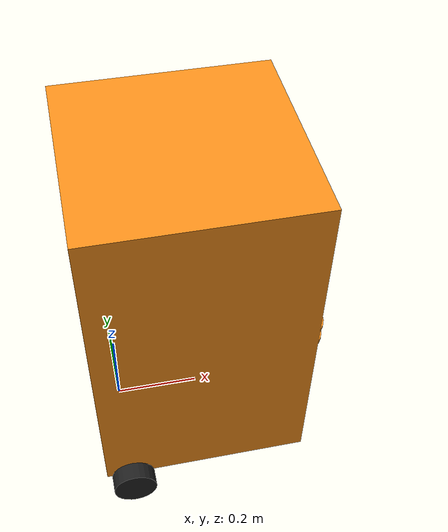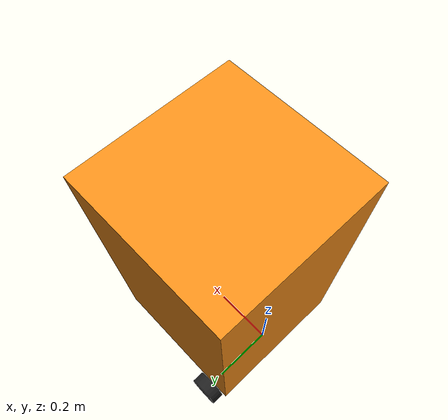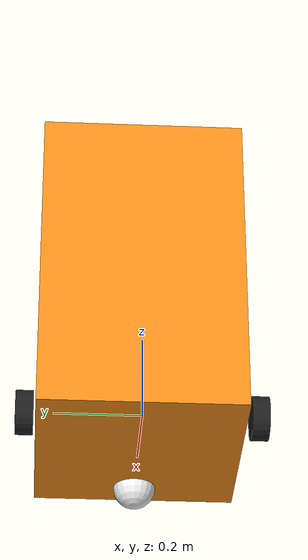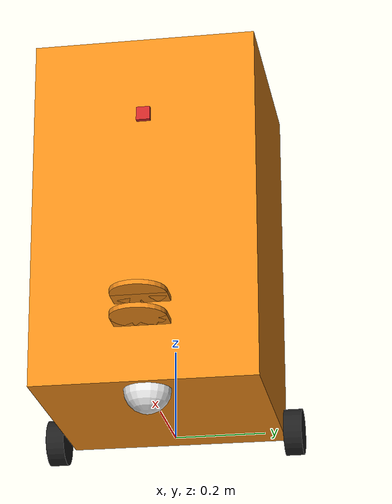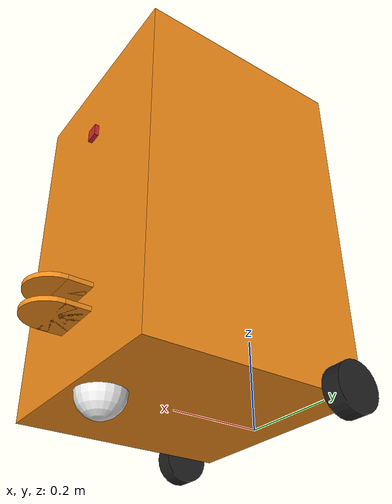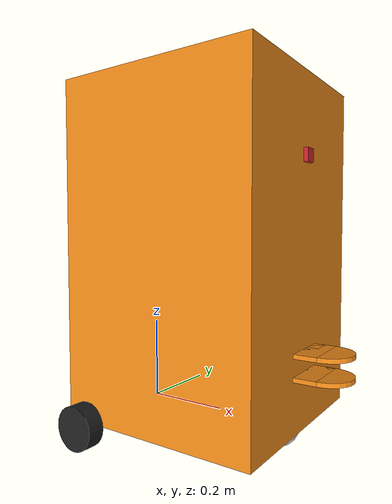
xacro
<?xml version="1.0"?>
<!-- Basic differential drive mobile base -->
<robot xmlns:xacro="http://www.ros.org/wiki/xacro" name="diffdrive_robot">
  <xacro:arg name="prefix" default="" />
  <xacro:arg name="use_mock_hardware" default="false" />

  <!-- Adding my own robot description xacro modelined earlier-->
  <xacro:include filename="bevbot_core.xacro"/>

  <!-- File for lidar and lidar mount -->
  <xacro:include filename="lidar.xacro"/>

  <!-- File for camera -->
  <xacro:include filename="camera.xacro"/>

  <!-- This ^ is old demo robot urdf-->

  <!-- Import Rviz colors -->
  <xacro:include filename="$(find ros2_control_demo_description)/diffbot/urdf/diffbot.materials.xacro" />

  <!-- Import diffbot ros2_control description -->
  <xacro:include filename="$(find ros2_control_demo_example_2)/ros2_control/diffbot.ros2_control.xacro" />

  <xacro:diffbot prefix="$(arg prefix)" />

  <xacro:diffbot_ros2_control
    name="DiffBot" prefix="$(arg prefix)" use_mock_hardware="$(arg use_mock_hardware)"/>

</robot>

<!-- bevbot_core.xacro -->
<robot xmlns:xacro="http://www.ros.org/wiki/xacro">

  <xacro:macro name="diffbot" params="prefix">

  <!-- Constants for robot dimensions -->
  <xacro:property name="PI" value="3.1415926535897931"/>
  <xacro:property name="base_mass" value="1" /> <!-- arbitrary value for base mass -->
  <xacro:property name="base_width" value=".4826" />
  <xacro:property name="base_length" value=".4826" />
  <xacro:property name="base_height" value=".78105" />
  <xacro:property name="wheel_mass" value="0.2" /> <!-- arbitrary value for wheel mass -->
  <xacro:property name="wheel_len" value="0.040" />
  <xacro:property name="wheel_space" value="0.005" />
  <xacro:property name="wheel_radius" value="0.0508" />
  <xacro:property name="caster_wheel_mass" value="0.1" /> <!-- arbitrary value for caster wheel mass -->
  <xacro:property name="caster_wheel_radius" value="0.0508" />
  <xacro:property name="caster_x" value="0.358" />
  <xacro:property name="z_offset" value="-${base_height/2}" /> <!-- Space btw top of beam and the each joint -->

  <!-- Base Link =============================================================================================-->

  <link name="${prefix}base_link">
  </link>

  <!-- Chassis link ====================================================================================-->

  <joint name="${prefix}chassis_joint" type="fixed">
    <parent link="${prefix}base_link"/>
    <child link="${prefix}chassis"/>
    <origin xyz="-.0623 0 0"/>
  </joint>

  <link name="${prefix}chassis">
    <visual>
      <origin xyz="${base_width/2} 0 ${base_height/2}" rpy="0 0 0"/>
      <geometry>
        <box size="${base_width} ${base_length} ${base_height}"/>
      </geometry>
      <material name="orange"/>
    </visual>

    <collision>
      <origin xyz="${base_width/2} 0 ${base_height/2}" rpy="0 0 0"/>
      <geometry>
        <box size="${base_width} ${base_length} ${base_height}"/>
      </geometry>
    </collision>

    <inertial>
      <origin xyz="${base_width/2} 0 ${base_height/2}" rpy="0 0 0"/>
      <mass value="${base_mass}"/>
      <inertia
        ixx="${base_mass / 12.0 * (base_length*base_length + base_height*base_height)}" ixy="0.0" ixz="0.0"
        iyy="${base_mass / 12.0 * (base_height*base_height + base_width*base_width)}" iyz="0.0"
        izz="${base_mass / 12.0 * (base_width*base_width + base_length*base_length)}"/>
      </inertial>
    </link>

    <!-- LEFT wheel Joint/link ===========================================================================-->

    <joint name="${prefix}left_wheel_joint" type="continuous">
      <parent link="${prefix}base_link"/>
      <child link="${prefix}left_wheel"/>
      <origin xyz="0 -${(base_width/2) + (wheel_len/2) + wheel_space} 0" rpy="0 0 0"/>
      <axis xyz="0 1 0"/>
      <dynamics damping="0.2"/>
      <limit effort="100" velocity="1.0"/>
    </joint>

    <link name="${prefix}left_wheel">
      <collision>
        <origin xyz="0 0 0" rpy="${PI/2} 0 0"/>
        <geometry>
          <cylinder length="${wheel_len}" radius="${wheel_radius}"/>
        </geometry>
      </collision>

      <visual>
        <origin xyz="0 0 0" rpy="${PI/2} 0 0"/>
        <geometry>
          <cylinder length="${wheel_len}" radius="${wheel_radius}"/>
        </geometry>
        <material name="black"/>
      </visual>

      <inertial>
        <origin xyz="0 0 0" rpy="${PI/2} 0 0"/>
        <mass value="${wheel_mass}"/>
        <inertia
          ixx="${wheel_mass / 12.0 * (3*wheel_radius*wheel_radius + wheel_len*wheel_len)}" ixy="0.0" ixz="0.0"
          iyy="${wheel_mass / 12.0 * (3*wheel_radius*wheel_radius + wheel_len*wheel_len)}" iyz="0.0"
          izz="${wheel_mass / 2.0 * wheel_radius*wheel_radius}"/>
        </inertial>
      </link>

    <!-- right wheel Joint/Link =========================================================================-->

    <joint name="${prefix}right_wheel_joint" type="continuous">
      <parent link="${prefix}base_link"/>
      <child link="${prefix}right_wheel"/>
      <origin xyz="0 ${(base_width/2) + (wheel_len/2) + wheel_space} 0" rpy="0 0 0"/>
      <axis xyz="0 1 0"/>
      <dynamics damping="0.2"/>
      <limit effort="100" velocity="1.0"/>
    </joint>

    <link name="${prefix}right_wheel">
      <collision>
        <origin xyz="0 0 0" rpy="${PI/2} 0 0"/>
        <geometry>
          <cylinder length="${wheel_len}" radius="${wheel_radius}"/>
        </geometry>
      </collision>

      <visual>
        <origin xyz="0 0 0" rpy="${PI/2} 0 0"/>
        <geometry>
          <cylinder length="${wheel_len}" radius="${wheel_radius}"/>
        </geometry>
        <material name="black"/>
      </visual>

      <inertial>
        <origin xyz="0 0 0" rpy="${PI/2} 0 0"/>
        <mass value="${wheel_mass}"/>
        <inertia
          ixx="${wheel_mass / 12.0 * (3*wheel_radius*wheel_radius + wheel_len*wheel_len)}" ixy="0.0" ixz="0.0"
          iyy="${wheel_mass / 12.0 * (3*wheel_radius*wheel_radius + wheel_len*wheel_len)}" iyz="0.0"
          izz="${wheel_mass / 2.0 * wheel_radius*wheel_radius}"/>
        </inertial>
      </link>

    <!-- Caster wheel Joint/Link =======================================================================-->

    <joint name="${prefix}caster_wheel_joint" type="fixed">
      <parent link="${prefix}base_link"/>
      <child link="${prefix}caster_wheel"/>
      <origin xyz="${caster_x} 0 0" rpy="0 0 0"/>
    </joint>

    <link name="${prefix}caster_wheel">
      <collision>
        <origin xyz="0 0 0" rpy="0 0 0"/>
        <geometry>
          <sphere radius="${caster_wheel_radius}"/>
        </geometry>
      </collision>

      <visual>
        <origin xyz="0 0 0" rpy="0 0 0"/>
        <geometry>
          <sphere radius="${caster_wheel_radius}"/>
        </geometry>
        <material name="white"/>
      </visual>

      <inertial>
        <origin xyz="0 0 0" rpy="0 0 0"/>
        <mass value="${caster_wheel_mass}"/>
        <inertia
          ixx="${caster_wheel_mass * 0.4 * (caster_wheel_radius * caster_wheel_radius)}" ixy="0.0" ixz="0.0"
          iyy="${caster_wheel_mass * 0.4 * (caster_wheel_radius * caster_wheel_radius)}" iyz="0.0"
          izz="${caster_wheel_mass * 0.4 * (caster_wheel_radius * caster_wheel_radius)}"/>
        </inertial>
      </link>

    <!-- lidar top cover link/joint ====================================================================================-->

    <joint name="${prefix}lidar_cover_top_joint" type="fixed">
      <parent link="${prefix}chassis"/>
      <child link="${prefix}cover_top"/>
      <origin xyz="${.4826 + .05 + .001} 0 ${.15-.02-.01+.005}"/>
    </joint>

    <link name="${prefix}cover_top">
    <visual>
      <origin xyz="0 0 0" rpy="0 0 0"/>
      <geometry>
        <cylinder radius=".06" length=".01"/>
      </geometry>
      <material name="orange"/>
    </visual>

    <collision>
      <origin xyz="0 0 0" rpy="0 0 0"/>
      <geometry>
        <cylinder radius=".06" length=".01"/>
      </geometry>
    </collision>
    </link>

    <joint name="${prefix}lidar_cover_top_box_joint" type="fixed">
      <parent link="${prefix}cover_top"/>
      <child link="${prefix}cover_top_box"/>
      <origin xyz="-.03 0 0"/>
    </joint>

    <link name="${prefix}cover_top_box">
    <visual>
      <origin xyz="0 0 0" rpy="0 0 0"/>
      <geometry>
        <box size=".06 .12 .01"/>
      </geometry>
      <material name="orange"/>
    </visual>

    <collision>
      <origin xyz="0 0 0" rpy="0 0 0"/>
      <geometry>
        <box size=".06 .06 .01"/>
      </geometry>
    </collision>
    </link>

    <!-- lidar bottom cover link/joint ====================================================================================-->

    <joint name="${prefix}lidar_cover_bottom_joint" type="fixed">
      <parent link="${prefix}chassis"/>
      <child link="${prefix}cover_bottom"/>
      <origin xyz="${.4826 + .05 + .001} 0 ${.15+.02+.01-.005}"/>
    </joint>

    <link name="${prefix}cover_bottom">
    <visual>
      <origin xyz="0 0 0" rpy="0 0 0"/>
      <geometry>
        <cylinder radius=".06" length=".01"/>
      </geometry>
      <material name="orange"/>
    </visual>

    <collision>
      <origin xyz="0 0 0" rpy="0 0 0"/>
      <geometry>
        <cylinder radius=".06" length=".01"/>
      </geometry>
    </collision>
    </link>

    <joint name="${prefix}lidar_cover_bottom_box_joint" type="fixed">
      <parent link="${prefix}cover_bottom"/>
      <child link="${prefix}cover_bottom_box"/>
      <origin xyz="-.03 0 0"/>
    </joint>

    <link name="${prefix}cover_bottom_box">
    <visual>
      <origin xyz="0 0 0" rpy="0 0 0"/>
      <geometry>
        <box size=".06 .12 .01"/>
      </geometry>
      <material name="orange"/>
    </visual>

    <collision>
      <origin xyz="0 0 0" rpy="0 0 0"/>
      <geometry>
        <box size=".06 .06 .01"/>
      </geometry>
    </collision>
    </link>

  </xacro:macro>

</robot>

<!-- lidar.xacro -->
<robot xmlns:xacro="http://www.ros.org/wiki/xacro" >

  <xacro:property name="lidar_rad" value=".05" />
  <xacro:property name="lidar_len" value=".04" />

    <joint name="laser_joint" type="fixed">
        <parent link="chassis"/>
        <child link="laser_frame"/>
        <origin xyz="${0.3683 + .05 + .001} 0 0.15" rpy="0 0 0"/>
    </joint>

    <link name="laser_frame">
        <visual>
            <geometry>
                <cylinder radius="${lidar_rad}" length="${lidar_len}"/>
            </geometry>
            <material name="red"/>
        </visual>
        <collision>
            <geometry>
                <cylinder radius="${lidar_rad}" length="${lidar_len}"/>
            </geometry>
        </collision>
    </link>

    <gazebo reference="laser_frame">
        <material>Gazebo/Red</material>
        <sensor name="laser" type="ray">
            <pose> 0 0 0 0 0 0 </pose>
            <visualize>true</visualize>
            <update_rate>10</update_rate>
            <ray>
                <scan>
                    <horizontal>
                        <samples>360</samples>
                        <min_angle>-3.14/2</min_angle>
                        <max_angle>3.14/2</max_angle>
                    </horizontal>
                </scan>
                <range>
                    <min>0.3</min>
                    <max>12</max>
                </range>
            </ray>
            <plugin name="laser_controller" filename="libgazebo_ros_ray_sensor.so">
                <ros>
                    <argument>~/out:=scan</argument>
                </ros>
                <output_type>sensor_msgs/LaserScan</output_type>
                <frame_name>laser_frame</frame_name>
            </plugin>
        </sensor>

    </gazebo>

</robot>

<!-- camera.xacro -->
<robot xmlns:xacro="http://www.ros.org/wiki/xacro" >

    <joint name="camera_joint" type="fixed">
        <parent link="chassis"/>
        <child link="camera_link"/>
        <origin xyz="${.4826 + .005} 0 .6" rpy="0 0 0"/>
    </joint>

    <link name="camera_link">
        <visual>
            <geometry>
                <box size="0.01 .03 .03" length="0.04"/>
            </geometry>
            <material name="red"/>
        </visual>
    </link>

    <joint name="camera_optical_joint" type="fixed">
        <parent link="camera_link"/>
        <child link="camera_link_optical"/>
        <origin xyz="0 0 0" rpy="${-pi/2} 0 ${-pi/2}"/>
    </joint>

    <link name="camera_link_optical"></link>

    <gazebo reference="camera_link">
        <material>Gazebo/Red</material>
        <sensor name="camera" type="camera">
            <pose> 0 0 0 0 0 0 </pose>
            <visualize>true</visualize>
            <update_rate>10</update_rate>
            <camera>
                <horizontal_fov>1.089</horizontal_fov>
                <image>
                    <format>R8G8B8</format>
                    <width>640</width>
                    <height>480</height>
                </image>
                <clip>
                    <near>0.05</near>
                    <far>8.0</far>
                </clip>
            </camera>
            <plugin name="camera_controller" filename="libgazebo_ros_camera.so">
                <frame_name>camera_link_optical</frame_name>
            </plugin>
        </sensor>

    </gazebo>

</robot>
